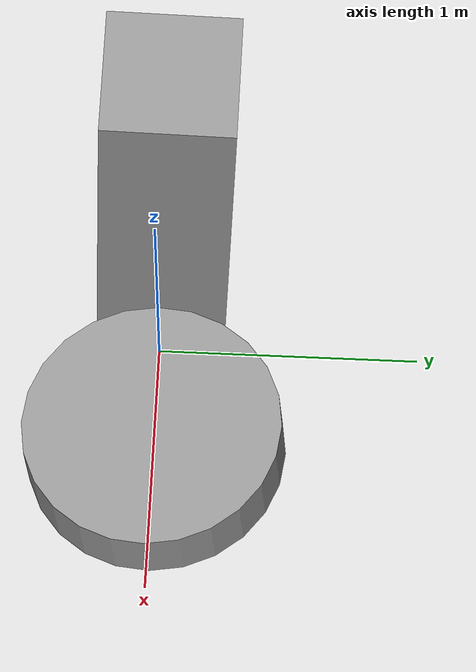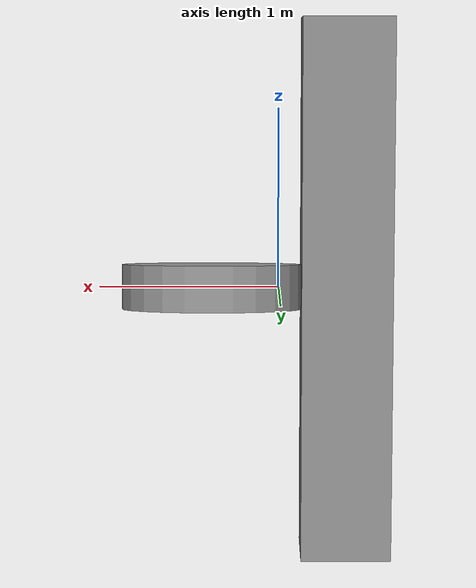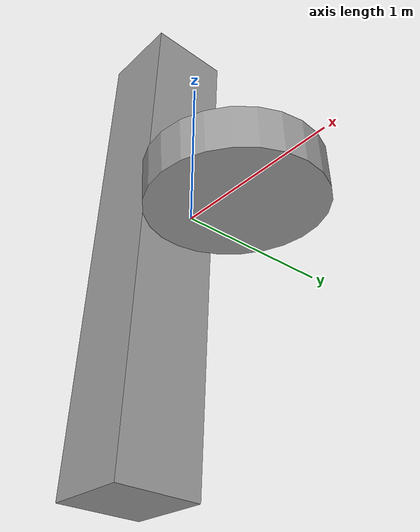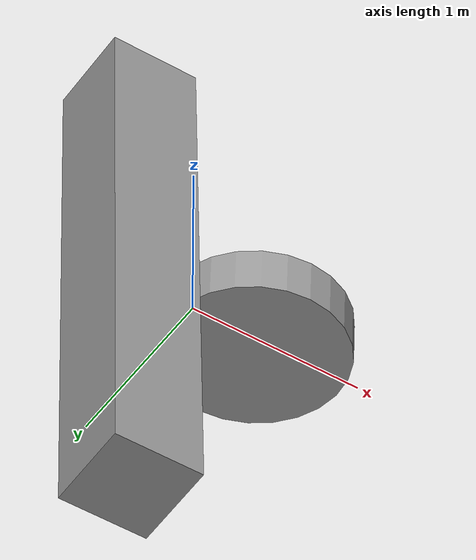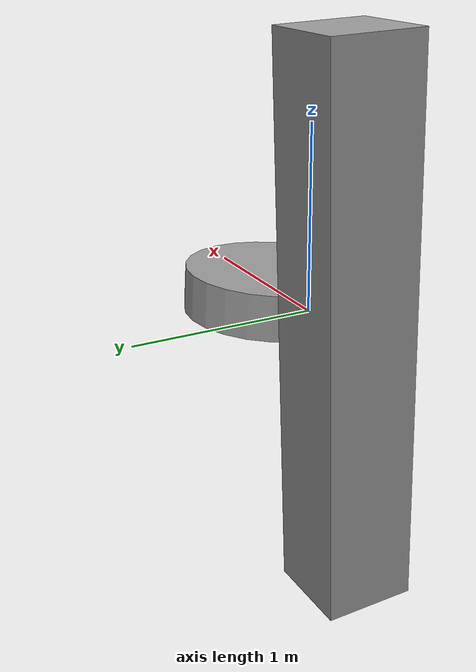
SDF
<?xml version='1.0'?>
<sdf version='1.6'>
  <model name='roombawithstruct'>
    <link name='link_0'>
      <pose frame=''>0.375 -0.000234 0.003743 -3.07905 0 0</pose>
      <inertial>
        <mass>1</mass>
        <inertia>
          <ixx>0.145833</ixx>
          <ixy>0</ixy>
          <ixz>0</ixz>
          <iyy>0.145833</iyy>
          <iyz>0</iyz>
          <izz>0.125</izz>
        </inertia>
        <pose frame=''>0 0 0 0 -0 0</pose>
      </inertial>
      <gravity>1</gravity>
      <self_collide>0</self_collide>
      <kinematic>0</kinematic>
      <visual name='visual'>
        <pose frame=''>0 0 0 0 -0 0</pose>
        <geometry>
          <cylinder>
            <radius>0.5</radius>
            <length>0.25</length>
          </cylinder>
        </geometry>
        <material>
          <lighting>1</lighting>
          <script>
            <uri>file://media/materials/scripts/gazebo.material</uri>
            <name>Gazebo/Grey</name>
          </script>
          <shader type='pixel'>
            <normal_map>__default__</normal_map>
          </shader>
          <ambient>0.3 0.3 0.3 1</ambient>
          <diffuse>0.7 0.7 0.7 1</diffuse>
          <specular>0.01 0.01 0.01 1</specular>
          <emissive>0 0 0 1</emissive>
        </material>
        <transparency>0</transparency>
        <cast_shadows>1</cast_shadows>
      </visual>
      <collision name='collision'>
        <laser_retro>0</laser_retro>
        <max_contacts>10</max_contacts>
        <pose frame=''>0 0 0 0 -0 0</pose>
        <geometry>
          <cylinder>
            <radius>0.5</radius>
            <length>0.25</length>
          </cylinder>
        </geometry>
        <surface>
          <friction>
            <ode>
              <mu>1</mu>
              <mu2>1</mu2>
              <fdir1>0 0 0</fdir1>
              <slip1>0</slip1>
              <slip2>0</slip2>
            </ode>
            <torsional>
              <coefficient>1</coefficient>
              <patch_radius>0</patch_radius>
              <surface_radius>0</surface_radius>
              <use_patch_radius>1</use_patch_radius>
              <ode>
                <slip>0</slip>
              </ode>
            </torsional>
          </friction>
          <bounce>
            <restitution_coefficient>0</restitution_coefficient>
            <threshold>1e+06</threshold>
          </bounce>
          <contact>
            <collide_without_contact>0</collide_without_contact>
            <collide_without_contact_bitmask>1</collide_without_contact_bitmask>
            <collide_bitmask>1</collide_bitmask>
            <ode>
              <soft_cfm>0</soft_cfm>
              <soft_erp>0.2</soft_erp>
              <kp>1e+13</kp>
              <kd>1</kd>
              <max_vel>0.01</max_vel>
              <min_depth>0</min_depth>
            </ode>
            <bullet>
              <split_impulse>1</split_impulse>
              <split_impulse_penetration_threshold>-0.01</split_impulse_penetration_threshold>
              <soft_cfm>0</soft_cfm>
              <soft_erp>0.2</soft_erp>
              <kp>1e+13</kp>
              <kd>1</kd>
            </bullet>
          </contact>
        </surface>
      </collision>
    </link>
    <link name='link_1'>
      <pose frame=''>-0.375 0.000235 -0.003743 -1.60252 0 0</pose>
      <inertial>
        <mass>1</mass>
        <inertia>
          <ixx>0.166667</ixx>
          <ixy>0</ixy>
          <ixz>0</ixz>
          <iyy>0.166667</iyy>
          <iyz>0</iyz>
          <izz>0.166667</izz>
        </inertia>
        <pose frame=''>0 0 0 0 -0 0</pose>
      </inertial>
      <gravity>1</gravity>
      <self_collide>0</self_collide>
      <kinematic>0</kinematic>
      <visual name='visual'>
        <pose frame=''>0 0 0 0 -0 0</pose>
        <geometry>
          <box>
            <size>0.5 3 0.5</size>
          </box>
        </geometry>
        <material>
          <lighting>1</lighting>
          <script>
            <uri>file://media/materials/scripts/gazebo.material</uri>
            <name>Gazebo/Grey</name>
          </script>
          <shader type='pixel'>
            <normal_map>__default__</normal_map>
          </shader>
          <ambient>0.3 0.3 0.3 1</ambient>
          <diffuse>0.7 0.7 0.7 1</diffuse>
          <specular>0.01 0.01 0.01 1</specular>
          <emissive>0 0 0 1</emissive>
        </material>
        <transparency>0</transparency>
        <cast_shadows>1</cast_shadows>
      </visual>
      <collision name='collision'>
        <laser_retro>0</laser_retro>
        <max_contacts>10</max_contacts>
        <pose frame=''>0 0 0 0 -0 0</pose>
        <geometry>
          <box>
            <size>0.5 3 0.5</size>
          </box>
        </geometry>
        <surface>
          <friction>
            <ode>
              <mu>1</mu>
              <mu2>1</mu2>
              <fdir1>0 0 0</fdir1>
              <slip1>0</slip1>
              <slip2>0</slip2>
            </ode>
            <torsional>
              <coefficient>1</coefficient>
              <patch_radius>0</patch_radius>
              <surface_radius>0</surface_radius>
              <use_patch_radius>1</use_patch_radius>
              <ode>
                <slip>0</slip>
              </ode>
            </torsional>
          </friction>
          <bounce>
            <restitution_coefficient>0</restitution_coefficient>
            <threshold>1e+06</threshold>
          </bounce>
          <contact>
            <collide_without_contact>0</collide_without_contact>
            <collide_without_contact_bitmask>1</collide_without_contact_bitmask>
            <collide_bitmask>1</collide_bitmask>
            <ode>
              <soft_cfm>0</soft_cfm>
              <soft_erp>0.2</soft_erp>
              <kp>1e+13</kp>
              <kd>1</kd>
              <max_vel>0.01</max_vel>
              <min_depth>0</min_depth>
            </ode>
            <bullet>
              <split_impulse>1</split_impulse>
              <split_impulse_penetration_threshold>-0.01</split_impulse_penetration_threshold>
              <soft_cfm>0</soft_cfm>
              <soft_erp>0.2</soft_erp>
              <kp>1e+13</kp>
              <kd>1</kd>
            </bullet>
          </contact>
        </surface>
      </collision>
    </link>
    <joint name='link_1_JOINT_0' type='fixed'>
      <parent>link_1</parent>
      <child>link_0</child>
      <pose frame=''>0 0 0 0 -0 0</pose>
      <physics>
        <ode>
          <limit>
            <cfm>0</cfm>
            <erp>0.2</erp>
          </limit>
          <suspension>
            <cfm>0</cfm>
            <erp>0.2</erp>
          </suspension>
        </ode>
      </physics>
    </joint>
    <joint name='link_1_JOINT_1' type='fixed'>
      <parent>link_1</parent>
      <child>link_0</child>
      <pose frame=''>0 0 0 0 -0 0</pose>
      <physics>
        <ode>
          <limit>
            <cfm>0</cfm>
            <erp>0.2</erp>
          </limit>
          <suspension>
            <cfm>0</cfm>
            <erp>0.2</erp>
          </suspension>
        </ode>
      </physics>
    </joint>
    <joint name='link_1_JOINT_2' type='revolute'>
      <parent>link_1</parent>
      <child>link_0</child>
      <pose frame=''>0 0 0 0 -0 0</pose>
      <axis>
        <xyz>1 0 0</xyz>
        <use_parent_model_frame>0</use_parent_model_frame>
        <limit>
          <lower>-1.79769e+308</lower>
          <upper>1.79769e+308</upper>
          <effort>-1</effort>
          <velocity>-1</velocity>
        </limit>
        <dynamics>
          <spring_reference>0</spring_reference>
          <spring_stiffness>0</spring_stiffness>
          <damping>0</damping>
        </dynamics>
      </axis>
      <physics>
        <ode>
          <limit>
            <cfm>0</cfm>
            <erp>0.2</erp>
          </limit>
          <suspension>
            <cfm>0</cfm>
            <erp>0.2</erp>
          </suspension>
        </ode>
      </physics>
    </joint>
    <static>0</static>
    <allow_auto_disable>1</allow_auto_disable>
  </model>
</sdf>
